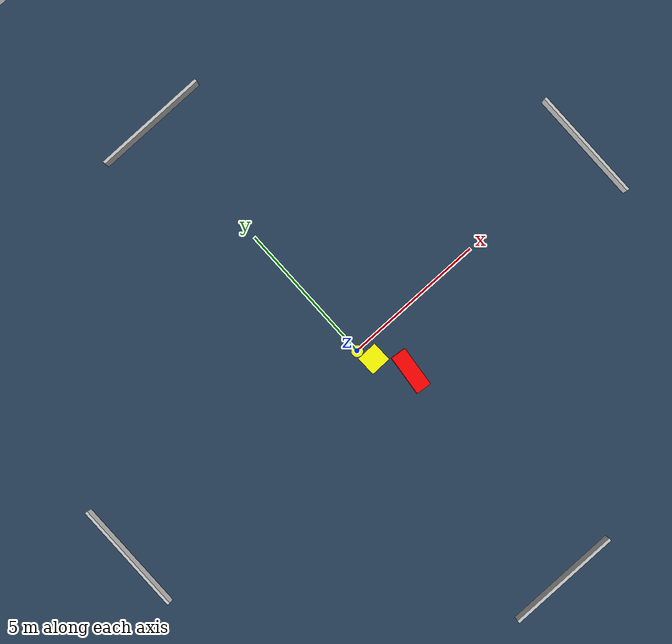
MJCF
<?xml version="1.0" ?>
<mujoco model="generated_environment">
  <option timestep="0.01" integrator="RK4" cone="elliptic"/>
  <default>
    <geom density="1"/>
  </default>
  <asset>
    <texture builtin="gradient" height="3072" name="skybox" rgb1="0.3 0.5 0.7" rgb2="0 0 0" type="skybox" width="512"/>
    <texture builtin="checker" height="300" name="groundplane" rgb1="0.2 0.3 0.4" rgb2="0.1 0.2 0.3" type="2d" width="300"/>
    <material name="groundplane" reflectance="0.2" texrepeat="5 5" texture="groundplane"/>
  </asset>
  <worldbody>
    <light dir="0 0 -1" directional="true" pos="0 0 1.5"/>
    <geom condim="3" friction="0.5 0.005 0.001" material="groundplane" name="floor" pos="0 0 0" size="0 0 0.05" type="plane"/>
    <body name="walls">
      <geom name="wall_1" condim="4" pos="-10.0 0.0 0.3" rgba="0.800000011920929 0.800000011920929 0.800000011920929 1.0" size="0.05 2.0 0.3" type="box"/>
      <geom name="wall_2" condim="4" pos="10.0 0.0 0.3" rgba="0.800000011920929 0.800000011920929 0.800000011920929 1.0" size="0.05 2.0 0.3" type="box"/>
      <geom name="wall_3" condim="4" pos="0.0 -10.0 0.3" rgba="0.800000011920929 0.800000011920929 0.800000011920929 1.0" size="2.0 0.05 0.3" type="box"/>
      <geom name="wall_4" condim="4" pos="0.0 10.0 0.3" rgba="0.800000011920929 0.800000011920929 0.800000011920929 1.0" size="2.0 0.05 0.3" type="box"/>
    </body>
    <body name="robot">
      <joint name="joint_x" type="slide" pos="0 0 0" axis="1 0 0"/>
      <joint name="joint_y" type="slide" pos="0 0 0" axis="0 1 0"/>
      <geom name="robot" type="cylinder" pos="0.0 0.0 0.2" size="0.2 0.2 0.0" mass="5.0" friction="1.0 0.005 0.0001" condim="4" rgba="1.0 1.0 0.0 1.0"/>
    </body>
    <body name="obstacle_1_movable">
      <geom name="obstacle_1_movable" condim="4" pos="0.23166277344408429 -0.5485271027224683 0.3" euler="0 0 91.03166812855372" friction="0.0 0.005 0.001" rgba="1.0 1.0 0.0 1.0" size="0.3459500051388155 0.36362352072524484 0.3" type="box" mass="0.1"/>
      <joint type="free"/>
    </body>
    <body name="obstacle_2_static">
      <geom name="obstacle_2_static" condim="4" pos="0.8652107333709921 -1.6449674752779164 0.3" euler="0 0 83.84088647655477" friction="0.0 0.005 0.001" rgba="1.0 0.0 0.0 1.0" size="0.709026633423324 0.26950562161417874 0.3" type="box"/>
    </body>
  </worldbody>
  <actuator>
    <motor name="actuator_x" joint="joint_x" gear="1" ctrlrange="-1 1"/>
    <motor name="actuator_y" joint="joint_y" gear="1" ctrlrange="-1 1"/>
  </actuator>
</mujoco>
